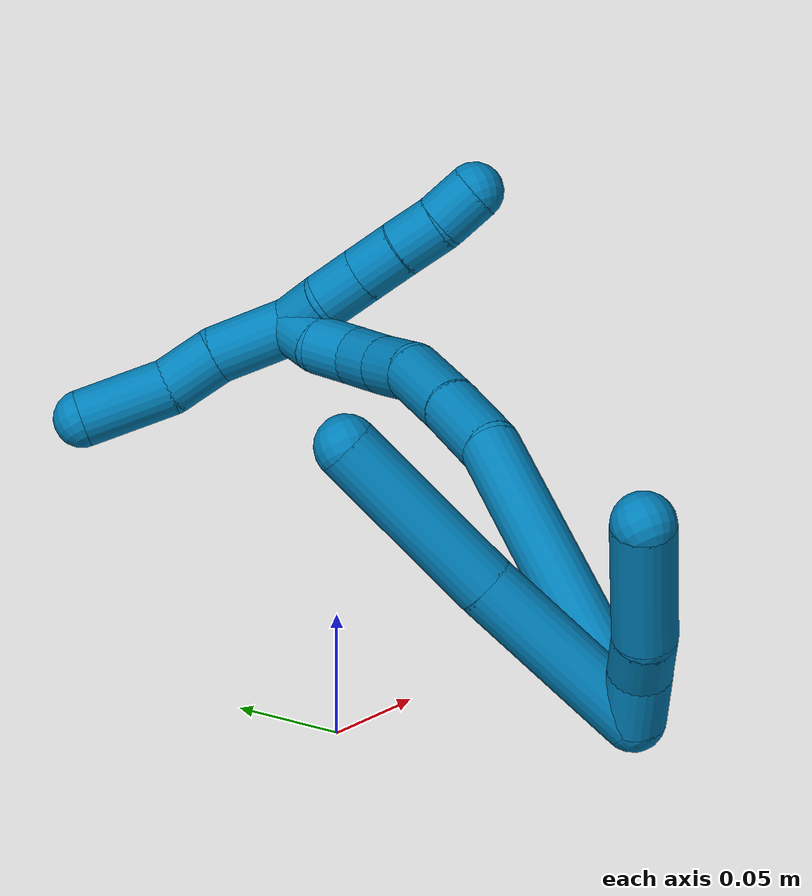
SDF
<sdf version="1.7">
 <world name="default">
  <model name="9">
   <static>0</static>
   <link name="9">
    <collision name="collision-cylinder-e_1_2_8">
     <pose>-0.017404 0.009405 0.032555 -0.281225 -0.474464 0.068421</pose>
     <geometry><cylinder><radius>0.0125</radius><length>0.076189</length></cylinder></geometry>
     <surface>
      <friction><ode><mu>1.16</mu><mu2>1.16</mu2><slip1>0</slip1><slip2>0</slip2></ode></friction>
      <contact><ode><kp>1e+06</kp><kd>1</kd><max_vel>0</max_vel><min_depth>0.001</min_depth></ode></contact>
     </surface>
    </collision>
    <visual name="visual-cylinder-e_1_2_8">
     <pose>-0.017404 0.009405 0.032555 -0.281225 -0.474464 0.068421</pose>
     <geometry><cylinder><radius>0.0125</radius><length>0.076189</length></cylinder></geometry>
     <material><ambient>0 0.490196 0.709804 1</ambient></material>
    </visual>
    <collision name="collision-cylinder-e_2_8_6">
     <pose>-0.051285 0.026431 0.097242 -0.232893 -0.462804 0.05511</pose>
     <geometry><cylinder><radius>0.0125</radius><length>0.073811</length></cylinder></geometry>
     <surface>
      <friction><ode><mu>1.16</mu><mu2>1.16</mu2><slip1>0</slip1><slip2>0</slip2></ode></friction>
      <contact><ode><kp>1e+06</kp><kd>1</kd><max_vel>0</max_vel><min_depth>0.001</min_depth></ode></contact>
     </surface>
    </collision>
    <visual name="visual-cylinder-e_2_8_6">
     <pose>-0.051285 0.026431 0.097242 -0.232893 -0.462804 0.05511</pose>
     <geometry><cylinder><radius>0.0125</radius><length>0.073811</length></cylinder></geometry>
     <material><ambient>0 0.490196 0.709804 1</ambient></material>
    </visual>
    <collision name="collision-cylinder-e_1_2_9">
     <pose>-0.006527 -0.007936 0.006637 0.874316 -0.562858 -0.268577</pose>
     <geometry><cylinder><radius>0.0125</radius><length>0.024465</length></cylinder></geometry>
     <surface>
      <friction><ode><mu>1.16</mu><mu2>1.16</mu2><slip1>0</slip1><slip2>0</slip2></ode></friction>
      <contact><ode><kp>1e+06</kp><kd>1</kd><max_vel>0</max_vel><min_depth>0.001</min_depth></ode></contact>
     </surface>
    </collision>
    <visual name="visual-cylinder-e_1_2_9">
     <pose>-0.006527 -0.007936 0.006637 0.874316 -0.562858 -0.268577</pose>
     <geometry><cylinder><radius>0.0125</radius><length>0.024465</length></cylinder></geometry>
     <material><ambient>0 0.490196 0.709804 1</ambient></material>
    </visual>
    <collision name="collision-cylinder-e_2_9_10">
     <pose>-0.020457 -0.022618 0.017413 1.02038 -0.751964 -0.434837</pose>
     <geometry><cylinder><radius>0.0125</radius><length>0.021674</length></cylinder></geometry>
     <surface>
      <friction><ode><mu>1.16</mu><mu2>1.16</mu2><slip1>0</slip1><slip2>0</slip2></ode></friction>
      <contact><ode><kp>1e+06</kp><kd>1</kd><max_vel>0</max_vel><min_depth>0.001</min_depth></ode></contact>
     </surface>
    </collision>
    <visual name="visual-cylinder-e_2_9_10">
     <pose>-0.020457 -0.022618 0.017413 1.02038 -0.751964 -0.434837</pose>
     <geometry><cylinder><radius>0.0125</radius><length>0.021674</length></cylinder></geometry>
     <material><ambient>0 0.490196 0.709804 1</ambient></material>
    </visual>
    <collision name="collision-cylinder-e_3_10_5">
     <pose>-0.043727 -0.044426 0.037257 0.764553 -0.630044 -0.260554</pose>
     <geometry><cylinder><radius>0.0125</radius><length>0.053861</length></cylinder></geometry>
     <surface>
      <friction><ode><mu>1.16</mu><mu2>1.16</mu2><slip1>0</slip1><slip2>0</slip2></ode></friction>
      <contact><ode><kp>1e+06</kp><kd>1</kd><max_vel>0</max_vel><min_depth>0.001</min_depth></ode></contact>
     </surface>
    </collision>
    <visual name="visual-cylinder-e_3_10_5">
     <pose>-0.043727 -0.044426 0.037257 0.764553 -0.630044 -0.260554</pose>
     <geometry><cylinder><radius>0.0125</radius><length>0.053861</length></cylinder></geometry>
     <material><ambient>0 0.490196 0.709804 1</ambient></material>
    </visual>
    <collision name="collision-cylinder-e_1_2_11">
     <pose>0.02851 0.017521 0.065736 -0.260483 0.396843 -0.052661</pose>
     <geometry><cylinder><radius>0.0125</radius><length>0.147526</length></cylinder></geometry>
     <surface>
      <friction><ode><mu>1.16</mu><mu2>1.16</mu2><slip1>0</slip1><slip2>0</slip2></ode></friction>
      <contact><ode><kp>1e+06</kp><kd>1</kd><max_vel>0</max_vel><min_depth>0.001</min_depth></ode></contact>
     </surface>
    </collision>
    <visual name="visual-cylinder-e_1_2_11">
     <pose>0.02851 0.017521 0.065736 -0.260483 0.396843 -0.052661</pose>
     <geometry><cylinder><radius>0.0125</radius><length>0.147526</length></cylinder></geometry>
     <material><ambient>0 0.490196 0.709804 1</ambient></material>
    </visual>
    <collision name="collision-cylinder-e_2_11_12">
     <pose>0.064318 0.042633 0.144433 -0.529775 0.452251 -0.124651</pose>
     <geometry><cylinder><radius>0.0125</radius><length>0.0334</length></cylinder></geometry>
     <surface>
      <friction><ode><mu>1.16</mu><mu2>1.16</mu2><slip1>0</slip1><slip2>0</slip2></ode></friction>
      <contact><ode><kp>1e+06</kp><kd>1</kd><max_vel>0</max_vel><min_depth>0.001</min_depth></ode></contact>
     </surface>
    </collision>
    <visual name="visual-cylinder-e_2_11_12">
     <pose>0.064318 0.042633 0.144433 -0.529775 0.452251 -0.124651</pose>
     <geometry><cylinder><radius>0.0125</radius><length>0.0334</length></cylinder></geometry>
     <material><ambient>0 0.490196 0.709804 1</ambient></material>
    </visual>
    <collision name="collision-cylinder-e_3_12_13">
     <pose>0.08008 0.058763 0.169833 -0.601655 0.511249 -0.161805</pose>
     <geometry><cylinder><radius>0.0125</radius><length>0.034598</length></cylinder></geometry>
     <surface>
      <friction><ode><mu>1.16</mu><mu2>1.16</mu2><slip1>0</slip1><slip2>0</slip2></ode></friction>
      <contact><ode><kp>1e+06</kp><kd>1</kd><max_vel>0</max_vel><min_depth>0.001</min_depth></ode></contact>
     </surface>
    </collision>
    <visual name="visual-cylinder-e_3_12_13">
     <pose>0.08008 0.058763 0.169833 -0.601655 0.511249 -0.161805</pose>
     <geometry><cylinder><radius>0.0125</radius><length>0.034598</length></cylinder></geometry>
     <material><ambient>0 0.490196 0.709804 1</ambient></material>
    </visual>
    <collision name="collision-cylinder-e_4_13_14">
     <pose>0.094257 0.075147 0.187886 -0.949553 0.53469 -0.279727</pose>
     <geometry><cylinder><radius>0.0125</radius><length>0.022423</length></cylinder></geometry>
     <surface>
      <friction><ode><mu>1.16</mu><mu2>1.16</mu2><slip1>0</slip1><slip2>0</slip2></ode></friction>
      <contact><ode><kp>1e+06</kp><kd>1</kd><max_vel>0</max_vel><min_depth>0.001</min_depth></ode></contact>
     </surface>
    </collision>
    <visual name="visual-cylinder-e_4_13_14">
     <pose>0.094257 0.075147 0.187886 -0.949553 0.53469 -0.279727</pose>
     <geometry><cylinder><radius>0.0125</radius><length>0.022423</length></cylinder></geometry>
     <material><ambient>0 0.490196 0.709804 1</ambient></material>
    </visual>
    <collision name="collision-cylinder-e_5_14_15">
     <pose>0.104769 0.090535 0.199585 -0.892111 0.459833 -0.222922</pose>
     <geometry><cylinder><radius>0.0125</radius><length>0.021631</length></cylinder></geometry>
     <surface>
      <friction><ode><mu>1.16</mu><mu2>1.16</mu2><slip1>0</slip1><slip2>0</slip2></ode></friction>
      <contact><ode><kp>1e+06</kp><kd>1</kd><max_vel>0</max_vel><min_depth>0.001</min_depth></ode></contact>
     </surface>
    </collision>
    <visual name="visual-cylinder-e_5_14_15">
     <pose>0.104769 0.090535 0.199585 -0.892111 0.459833 -0.222922</pose>
     <geometry><cylinder><radius>0.0125</radius><length>0.021631</length></cylinder></geometry>
     <material><ambient>0 0.490196 0.709804 1</ambient></material>
    </visual>
    <collision name="collision-cylinder-e_6_15_16">
     <pose>0.11084 0.10575 0.212223 -0.863762 0.125334 -0.057826</pose>
     <geometry><cylinder><radius>0.0125</radius><length>0.020336</length></cylinder></geometry>
     <surface>
      <friction><ode><mu>1.16</mu><mu2>1.16</mu2><slip1>0</slip1><slip2>0</slip2></ode></friction>
      <contact><ode><kp>1e+06</kp><kd>1</kd><max_vel>0</max_vel><min_depth>0.001</min_depth></ode></contact>
     </surface>
    </collision>
    <visual name="visual-cylinder-e_6_15_16">
     <pose>0.11084 0.10575 0.212223 -0.863762 0.125334 -0.057826</pose>
     <geometry><cylinder><radius>0.0125</radius><length>0.020336</length></cylinder></geometry>
     <material><ambient>0 0.490196 0.709804 1</ambient></material>
    </visual>
    <collision name="collision-cylinder-e_7_16_1">
     <pose>0.11537 0.119059 0.22642 -0.635644 0.330459 -0.109603</pose>
     <geometry><cylinder><radius>0.0125</radius><length>0.020086</length></cylinder></geometry>
     <surface>
      <friction><ode><mu>1.16</mu><mu2>1.16</mu2><slip1>0</slip1><slip2>0</slip2></ode></friction>
      <contact><ode><kp>1e+06</kp><kd>1</kd><max_vel>0</max_vel><min_depth>0.001</min_depth></ode></contact>
     </surface>
    </collision>
    <visual name="visual-cylinder-e_7_16_1">
     <pose>0.11537 0.119059 0.22642 -0.635644 0.330459 -0.109603</pose>
     <geometry><cylinder><radius>0.0125</radius><length>0.020086</length></cylinder></geometry>
     <material><ambient>0 0.490196 0.709804 1</ambient></material>
    </visual>
    <collision name="collision-cylinder-e_1_1_17">
     <pose>0.117486 0.114799 0.234884 1.48819 -0.114546 -0.105472</pose>
     <geometry><cylinder><radius>0.0125</radius><length>0.02</length></cylinder></geometry>
     <surface>
      <friction><ode><mu>1.16</mu><mu2>1.16</mu2><slip1>0</slip1><slip2>0</slip2></ode></friction>
      <contact><ode><kp>1e+06</kp><kd>1</kd><max_vel>0</max_vel><min_depth>0.001</min_depth></ode></contact>
     </surface>
    </collision>
    <visual name="visual-cylinder-e_1_1_17">
     <pose>0.117486 0.114799 0.234884 1.48819 -0.114546 -0.105472</pose>
     <geometry><cylinder><radius>0.0125</radius><length>0.02</length></cylinder></geometry>
     <material><ambient>0 0.490196 0.709804 1</ambient></material>
    </visual>
    <collision name="collision-cylinder-e_2_17_18">
     <pose>0.117664 0.095069 0.236988 1.44079 0.132533 0.116372</pose>
     <geometry><cylinder><radius>0.0125</radius><length>0.02</length></cylinder></geometry>
     <surface>
      <friction><ode><mu>1.16</mu><mu2>1.16</mu2><slip1>0</slip1><slip2>0</slip2></ode></friction>
      <contact><ode><kp>1e+06</kp><kd>1</kd><max_vel>0</max_vel><min_depth>0.001</min_depth></ode></contact>
     </surface>
    </collision>
    <visual name="visual-cylinder-e_2_17_18">
     <pose>0.117664 0.095069 0.236988 1.44079 0.132533 0.116372</pose>
     <geometry><cylinder><radius>0.0125</radius><length>0.02</length></cylinder></geometry>
     <material><ambient>0 0.490196 0.709804 1</ambient></material>
    </visual>
    <collision name="collision-cylinder-e_3_18_19">
     <pose>0.120185 0.075388 0.23949 1.44791 0.120224 0.106317</pose>
     <geometry><cylinder><radius>0.0125</radius><length>0.02</length></cylinder></geometry>
     <surface>
      <friction><ode><mu>1.16</mu><mu2>1.16</mu2><slip1>0</slip1><slip2>0</slip2></ode></friction>
      <contact><ode><kp>1e+06</kp><kd>1</kd><max_vel>0</max_vel><min_depth>0.001</min_depth></ode></contact>
     </surface>
    </collision>
    <visual name="visual-cylinder-e_3_18_19">
     <pose>0.120185 0.075388 0.23949 1.44791 0.120224 0.106317</pose>
     <geometry><cylinder><radius>0.0125</radius><length>0.02</length></cylinder></geometry>
     <material><ambient>0 0.490196 0.709804 1</ambient></material>
    </visual>
    <collision name="collision-cylinder-e_4_19_20">
     <pose>0.123116 0.055763 0.241937 1.44567 0.173998 0.153569</pose>
     <geometry><cylinder><radius>0.0125</radius><length>0.02</length></cylinder></geometry>
     <surface>
      <friction><ode><mu>1.16</mu><mu2>1.16</mu2><slip1>0</slip1><slip2>0</slip2></ode></friction>
      <contact><ode><kp>1e+06</kp><kd>1</kd><max_vel>0</max_vel><min_depth>0.001</min_depth></ode></contact>
     </surface>
    </collision>
    <visual name="visual-cylinder-e_4_19_20">
     <pose>0.123116 0.055763 0.241937 1.44567 0.173998 0.153569</pose>
     <geometry><cylinder><radius>0.0125</radius><length>0.02</length></cylinder></geometry>
     <material><ambient>0 0.490196 0.709804 1</ambient></material>
    </visual>
    <collision name="collision-cylinder-e_5_20_4">
     <pose>0.127193 0.036687 0.245984 1.27669 0.236838 0.176097</pose>
     <geometry><cylinder><radius>0.0125</radius><length>0.02</length></cylinder></geometry>
     <surface>
      <friction><ode><mu>1.16</mu><mu2>1.16</mu2><slip1>0</slip1><slip2>0</slip2></ode></friction>
      <contact><ode><kp>1e+06</kp><kd>1</kd><max_vel>0</max_vel><min_depth>0.001</min_depth></ode></contact>
     </surface>
    </collision>
    <visual name="visual-cylinder-e_5_20_4">
     <pose>0.127193 0.036687 0.245984 1.27669 0.236838 0.176097</pose>
     <geometry><cylinder><radius>0.0125</radius><length>0.02</length></cylinder></geometry>
     <material><ambient>0 0.490196 0.709804 1</ambient></material>
    </visual>
    <collision name="collision-cylinder-e_1_1_21">
     <pose>0.113799 0.141718 0.235261 -1.50059 -0.275873 0.257367</pose>
     <geometry><cylinder><radius>0.0125</radius><length>0.035463</length></cylinder></geometry>
     <surface>
      <friction><ode><mu>1.16</mu><mu2>1.16</mu2><slip1>0</slip1><slip2>0</slip2></ode></friction>
      <contact><ode><kp>1e+06</kp><kd>1</kd><max_vel>0</max_vel><min_depth>0.001</min_depth></ode></contact>
     </surface>
    </collision>
    <visual name="visual-cylinder-e_1_1_21">
     <pose>0.113799 0.141718 0.235261 -1.50059 -0.275873 0.257367</pose>
     <geometry><cylinder><radius>0.0125</radius><length>0.035463</length></cylinder></geometry>
     <material><ambient>0 0.490196 0.709804 1</ambient></material>
    </visual>
    <collision name="collision-cylinder-e_2_21_22">
     <pose>0.105611 0.170404 0.234529 -1.73464 -0.276682 0.325377</pose>
     <geometry><cylinder><radius>0.0125</radius><length>0.024585</length></cylinder></geometry>
     <surface>
      <friction><ode><mu>1.16</mu><mu2>1.16</mu2><slip1>0</slip1><slip2>0</slip2></ode></friction>
      <contact><ode><kp>1e+06</kp><kd>1</kd><max_vel>0</max_vel><min_depth>0.001</min_depth></ode></contact>
     </surface>
    </collision>
    <visual name="visual-cylinder-e_2_21_22">
     <pose>0.105611 0.170404 0.234529 -1.73464 -0.276682 0.325377</pose>
     <geometry><cylinder><radius>0.0125</radius><length>0.024585</length></cylinder></geometry>
     <material><ambient>0 0.490196 0.709804 1</ambient></material>
    </visual>
    <collision name="collision-cylinder-e_3_22_3">
     <pose>0.093143 0.199829 0.233417 -1.52483 -0.473567 0.453022</pose>
     <geometry><cylinder><radius>0.0125</radius><length>0.039952</length></cylinder></geometry>
     <surface>
      <friction><ode><mu>1.16</mu><mu2>1.16</mu2><slip1>0</slip1><slip2>0</slip2></ode></friction>
      <contact><ode><kp>1e+06</kp><kd>1</kd><max_vel>0</max_vel><min_depth>0.001</min_depth></ode></contact>
     </surface>
    </collision>
    <visual name="visual-cylinder-e_3_22_3">
     <pose>0.093143 0.199829 0.233417 -1.52483 -0.473567 0.453022</pose>
     <geometry><cylinder><radius>0.0125</radius><length>0.039952</length></cylinder></geometry>
     <material><ambient>0 0.490196 0.709804 1</ambient></material>
    </visual>
    <collision name="collision-sphere-3">
     <pose>0.084033 0.217588 0.234234 0 -0 0</pose>
     <geometry><sphere><radius>0.0125</radius></sphere></geometry>
     <surface>
      <friction><ode><mu>1.16</mu><mu2>1.16</mu2><slip1>0</slip1><slip2>0</slip2></ode></friction>
      <contact><ode><kp>1e+06</kp><kd>1</kd><max_vel>0</max_vel><min_depth>0.001</min_depth></ode></contact>
     </surface>
    </collision>
    <visual name="visual-sphere-3">
     <pose>0.084033 0.217588 0.234234 0 -0 0</pose>
     <geometry><sphere><radius>0.0125</radius></sphere></geometry>
     <material><ambient>0 0.490196 0.709804 1</ambient></material>
    </visual>
    <collision name="collision-sphere-22">
     <pose>0.102253 0.18207 0.2326 0 -0 0</pose>
     <geometry><sphere><radius>0.0125</radius></sphere></geometry>
     <surface>
      <friction><ode><mu>1.16</mu><mu2>1.16</mu2><slip1>0</slip1><slip2>0</slip2></ode></friction>
      <contact><ode><kp>1e+06</kp><kd>1</kd><max_vel>0</max_vel><min_depth>0.001</min_depth></ode></contact>
     </surface>
    </collision>
    <visual name="visual-sphere-22">
     <pose>0.102253 0.18207 0.2326 0 -0 0</pose>
     <geometry><sphere><radius>0.0125</radius></sphere></geometry>
     <material><ambient>0 0.490196 0.709804 1</ambient></material>
    </visual>
    <collision name="collision-sphere-21">
     <pose>0.108969 0.158737 0.236458 0 -0 0</pose>
     <geometry><sphere><radius>0.0125</radius></sphere></geometry>
     <surface>
      <friction><ode><mu>1.16</mu><mu2>1.16</mu2><slip1>0</slip1><slip2>0</slip2></ode></friction>
      <contact><ode><kp>1e+06</kp><kd>1</kd><max_vel>0</max_vel><min_depth>0.001</min_depth></ode></contact>
     </surface>
    </collision>
    <visual name="visual-sphere-21">
     <pose>0.108969 0.158737 0.236458 0 -0 0</pose>
     <geometry><sphere><radius>0.0125</radius></sphere></geometry>
     <material><ambient>0 0.490196 0.709804 1</ambient></material>
    </visual>
    <collision name="collision-sphere-4">
     <pose>0.129539 0.027384 0.248802 0 -0 0</pose>
     <geometry><sphere><radius>0.0125</radius></sphere></geometry>
     <surface>
      <friction><ode><mu>1.16</mu><mu2>1.16</mu2><slip1>0</slip1><slip2>0</slip2></ode></friction>
      <contact><ode><kp>1e+06</kp><kd>1</kd><max_vel>0</max_vel><min_depth>0.001</min_depth></ode></contact>
     </surface>
    </collision>
    <visual name="visual-sphere-4">
     <pose>0.129539 0.027384 0.248802 0 -0 0</pose>
     <geometry><sphere><radius>0.0125</radius></sphere></geometry>
     <material><ambient>0 0.490196 0.709804 1</ambient></material>
    </visual>
    <collision name="collision-sphere-20">
     <pose>0.124847 0.045991 0.243166 0 -0 0</pose>
     <geometry><sphere><radius>0.0125</radius></sphere></geometry>
     <surface>
      <friction><ode><mu>1.16</mu><mu2>1.16</mu2><slip1>0</slip1><slip2>0</slip2></ode></friction>
      <contact><ode><kp>1e+06</kp><kd>1</kd><max_vel>0</max_vel><min_depth>0.001</min_depth></ode></contact>
     </surface>
    </collision>
    <visual name="visual-sphere-20">
     <pose>0.124847 0.045991 0.243166 0 -0 0</pose>
     <geometry><sphere><radius>0.0125</radius></sphere></geometry>
     <material><ambient>0 0.490196 0.709804 1</ambient></material>
    </visual>
    <collision name="collision-sphere-5">
     <pose>-0.059594 -0.059489 0.052961 0 -0 0</pose>
     <geometry><sphere><radius>0.0125</radius></sphere></geometry>
     <surface>
      <friction><ode><mu>1.16</mu><mu2>1.16</mu2><slip1>0</slip1><slip2>0</slip2></ode></friction>
      <contact><ode><kp>1e+06</kp><kd>1</kd><max_vel>0</max_vel><min_depth>0.001</min_depth></ode></contact>
     </surface>
    </collision>
    <visual name="visual-sphere-5">
     <pose>-0.059594 -0.059489 0.052961 0 -0 0</pose>
     <geometry><sphere><radius>0.0125</radius></sphere></geometry>
     <material><ambient>0 0.490196 0.709804 1</ambient></material>
    </visual>
    <collision name="collision-sphere-10">
     <pose>-0.02786 -0.029364 0.021553 0 -0 0</pose>
     <geometry><sphere><radius>0.0125</radius></sphere></geometry>
     <surface>
      <friction><ode><mu>1.16</mu><mu2>1.16</mu2><slip1>0</slip1><slip2>0</slip2></ode></friction>
      <contact><ode><kp>1e+06</kp><kd>1</kd><max_vel>0</max_vel><min_depth>0.001</min_depth></ode></contact>
     </surface>
    </collision>
    <visual name="visual-sphere-10">
     <pose>-0.02786 -0.029364 0.021553 0 -0 0</pose>
     <geometry><sphere><radius>0.0125</radius></sphere></geometry>
     <material><ambient>0 0.490196 0.709804 1</ambient></material>
    </visual>
    <collision name="collision-sphere-6">
     <pose>-0.067761 0.034052 0.129374 0 -0 0</pose>
     <geometry><sphere><radius>0.0125</radius></sphere></geometry>
     <surface>
      <friction><ode><mu>1.16</mu><mu2>1.16</mu2><slip1>0</slip1><slip2>0</slip2></ode></friction>
      <contact><ode><kp>1e+06</kp><kd>1</kd><max_vel>0</max_vel><min_depth>0.001</min_depth></ode></contact>
     </surface>
    </collision>
    <visual name="visual-sphere-6">
     <pose>-0.067761 0.034052 0.129374 0 -0 0</pose>
     <geometry><sphere><radius>0.0125</radius></sphere></geometry>
     <material><ambient>0 0.490196 0.709804 1</ambient></material>
    </visual>
    <collision name="collision-sphere-9">
     <pose>-0.013055 -0.015872 0.013273 0 -0 0</pose>
     <geometry><sphere><radius>0.0125</radius></sphere></geometry>
     <surface>
      <friction><ode><mu>1.16</mu><mu2>1.16</mu2><slip1>0</slip1><slip2>0</slip2></ode></friction>
      <contact><ode><kp>1e+06</kp><kd>1</kd><max_vel>0</max_vel><min_depth>0.001</min_depth></ode></contact>
     </surface>
    </collision>
    <visual name="visual-sphere-9">
     <pose>-0.013055 -0.015872 0.013273 0 -0 0</pose>
     <geometry><sphere><radius>0.0125</radius></sphere></geometry>
     <material><ambient>0 0.490196 0.709804 1</ambient></material>
    </visual>
    <collision name="collision-sphere-2">
     <geometry><sphere><radius>0.0125</radius></sphere></geometry>
     <surface>
      <friction><ode><mu>1.16</mu><mu2>1.16</mu2><slip1>0</slip1><slip2>0</slip2></ode></friction>
      <contact><ode><kp>1e+06</kp><kd>1</kd><max_vel>0</max_vel><min_depth>0.001</min_depth></ode></contact>
     </surface>
    </collision>
    <visual name="visual-sphere-2">
     <geometry><sphere><radius>0.0125</radius></sphere></geometry>
     <material><ambient>0 0.490196 0.709804 1</ambient></material>
    </visual>
    <collision name="collision-sphere-19">
     <pose>0.121384 0.065535 0.240707 0 -0 0</pose>
     <geometry><sphere><radius>0.0125</radius></sphere></geometry>
     <surface>
      <friction><ode><mu>1.16</mu><mu2>1.16</mu2><slip1>0</slip1><slip2>0</slip2></ode></friction>
      <contact><ode><kp>1e+06</kp><kd>1</kd><max_vel>0</max_vel><min_depth>0.001</min_depth></ode></contact>
     </surface>
    </collision>
    <visual name="visual-sphere-19">
     <pose>0.121384 0.065535 0.240707 0 -0 0</pose>
     <geometry><sphere><radius>0.0125</radius></sphere></geometry>
     <material><ambient>0 0.490196 0.709804 1</ambient></material>
    </visual>
    <collision name="collision-sphere-8">
     <pose>-0.034808 0.018809 0.065111 0 -0 0</pose>
     <geometry><sphere><radius>0.0125</radius></sphere></geometry>
     <surface>
      <friction><ode><mu>1.16</mu><mu2>1.16</mu2><slip1>0</slip1><slip2>0</slip2></ode></friction>
      <contact><ode><kp>1e+06</kp><kd>1</kd><max_vel>0</max_vel><min_depth>0.001</min_depth></ode></contact>
     </surface>
    </collision>
    <visual name="visual-sphere-8">
     <pose>-0.034808 0.018809 0.065111 0 -0 0</pose>
     <geometry><sphere><radius>0.0125</radius></sphere></geometry>
     <material><ambient>0 0.490196 0.709804 1</ambient></material>
    </visual>
    <collision name="collision-sphere-11">
     <pose>0.05702 0.035042 0.131471 0 -0 0</pose>
     <geometry><sphere><radius>0.0125</radius></sphere></geometry>
     <surface>
      <friction><ode><mu>1.16</mu><mu2>1.16</mu2><slip1>0</slip1><slip2>0</slip2></ode></friction>
      <contact><ode><kp>1e+06</kp><kd>1</kd><max_vel>0</max_vel><min_depth>0.001</min_depth></ode></contact>
     </surface>
    </collision>
    <visual name="visual-sphere-11">
     <pose>0.05702 0.035042 0.131471 0 -0 0</pose>
     <geometry><sphere><radius>0.0125</radius></sphere></geometry>
     <material><ambient>0 0.490196 0.709804 1</ambient></material>
    </visual>
    <collision name="collision-sphere-12">
     <pose>0.071616 0.050224 0.157395 0 -0 0</pose>
     <geometry><sphere><radius>0.0125</radius></sphere></geometry>
     <surface>
      <friction><ode><mu>1.16</mu><mu2>1.16</mu2><slip1>0</slip1><slip2>0</slip2></ode></friction>
      <contact><ode><kp>1e+06</kp><kd>1</kd><max_vel>0</max_vel><min_depth>0.001</min_depth></ode></contact>
     </surface>
    </collision>
    <visual name="visual-sphere-12">
     <pose>0.071616 0.050224 0.157395 0 -0 0</pose>
     <geometry><sphere><radius>0.0125</radius></sphere></geometry>
     <material><ambient>0 0.490196 0.709804 1</ambient></material>
    </visual>
    <collision name="collision-sphere-13">
     <pose>0.088544 0.067303 0.182271 0 -0 0</pose>
     <geometry><sphere><radius>0.0125</radius></sphere></geometry>
     <surface>
      <friction><ode><mu>1.16</mu><mu2>1.16</mu2><slip1>0</slip1><slip2>0</slip2></ode></friction>
      <contact><ode><kp>1e+06</kp><kd>1</kd><max_vel>0</max_vel><min_depth>0.001</min_depth></ode></contact>
     </surface>
    </collision>
    <visual name="visual-sphere-13">
     <pose>0.088544 0.067303 0.182271 0 -0 0</pose>
     <geometry><sphere><radius>0.0125</radius></sphere></geometry>
     <material><ambient>0 0.490196 0.709804 1</ambient></material>
    </visual>
    <collision name="collision-sphere-14">
     <pose>0.099969 0.082991 0.193501 0 -0 0</pose>
     <geometry><sphere><radius>0.0125</radius></sphere></geometry>
     <surface>
      <friction><ode><mu>1.16</mu><mu2>1.16</mu2><slip1>0</slip1><slip2>0</slip2></ode></friction>
      <contact><ode><kp>1e+06</kp><kd>1</kd><max_vel>0</max_vel><min_depth>0.001</min_depth></ode></contact>
     </surface>
    </collision>
    <visual name="visual-sphere-14">
     <pose>0.099969 0.082991 0.193501 0 -0 0</pose>
     <geometry><sphere><radius>0.0125</radius></sphere></geometry>
     <material><ambient>0 0.490196 0.709804 1</ambient></material>
    </visual>
    <collision name="collision-sphere-15">
     <pose>0.109569 0.098079 0.205669 0 -0 0</pose>
     <geometry><sphere><radius>0.0125</radius></sphere></geometry>
     <surface>
      <friction><ode><mu>1.16</mu><mu2>1.16</mu2><slip1>0</slip1><slip2>0</slip2></ode></friction>
      <contact><ode><kp>1e+06</kp><kd>1</kd><max_vel>0</max_vel><min_depth>0.001</min_depth></ode></contact>
     </surface>
    </collision>
    <visual name="visual-sphere-15">
     <pose>0.109569 0.098079 0.205669 0 -0 0</pose>
     <geometry><sphere><radius>0.0125</radius></sphere></geometry>
     <material><ambient>0 0.490196 0.709804 1</ambient></material>
    </visual>
    <collision name="collision-sphere-16">
     <pose>0.112111 0.11342 0.218776 0 -0 0</pose>
     <geometry><sphere><radius>0.0125</radius></sphere></geometry>
     <surface>
      <friction><ode><mu>1.16</mu><mu2>1.16</mu2><slip1>0</slip1><slip2>0</slip2></ode></friction>
      <contact><ode><kp>1e+06</kp><kd>1</kd><max_vel>0</max_vel><min_depth>0.001</min_depth></ode></contact>
     </surface>
    </collision>
    <visual name="visual-sphere-16">
     <pose>0.112111 0.11342 0.218776 0 -0 0</pose>
     <geometry><sphere><radius>0.0125</radius></sphere></geometry>
     <material><ambient>0 0.490196 0.709804 1</ambient></material>
    </visual>
    <collision name="collision-sphere-1">
     <pose>0.118629 0.124699 0.234064 0 -0 0</pose>
     <geometry><sphere><radius>0.0125</radius></sphere></geometry>
     <surface>
      <friction><ode><mu>1.16</mu><mu2>1.16</mu2><slip1>0</slip1><slip2>0</slip2></ode></friction>
      <contact><ode><kp>1e+06</kp><kd>1</kd><max_vel>0</max_vel><min_depth>0.001</min_depth></ode></contact>
     </surface>
    </collision>
    <visual name="visual-sphere-1">
     <pose>0.118629 0.124699 0.234064 0 -0 0</pose>
     <geometry><sphere><radius>0.0125</radius></sphere></geometry>
     <material><ambient>0 0.490196 0.709804 1</ambient></material>
    </visual>
    <collision name="collision-sphere-18">
     <pose>0.118986 0.085241 0.238273 0 -0 0</pose>
     <geometry><sphere><radius>0.0125</radius></sphere></geometry>
     <surface>
      <friction><ode><mu>1.16</mu><mu2>1.16</mu2><slip1>0</slip1><slip2>0</slip2></ode></friction>
      <contact><ode><kp>1e+06</kp><kd>1</kd><max_vel>0</max_vel><min_depth>0.001</min_depth></ode></contact>
     </surface>
    </collision>
    <visual name="visual-sphere-18">
     <pose>0.118986 0.085241 0.238273 0 -0 0</pose>
     <geometry><sphere><radius>0.0125</radius></sphere></geometry>
     <material><ambient>0 0.490196 0.709804 1</ambient></material>
    </visual>
    <collision name="collision-sphere-17">
     <pose>0.116343 0.104898 0.235703 0 -0 0</pose>
     <geometry><sphere><radius>0.0125</radius></sphere></geometry>
     <surface>
      <friction><ode><mu>1.16</mu><mu2>1.16</mu2><slip1>0</slip1><slip2>0</slip2></ode></friction>
      <contact><ode><kp>1e+06</kp><kd>1</kd><max_vel>0</max_vel><min_depth>0.001</min_depth></ode></contact>
     </surface>
    </collision>
    <visual name="visual-sphere-17">
     <pose>0.116343 0.104898 0.235703 0 -0 0</pose>
     <geometry><sphere><radius>0.0125</radius></sphere></geometry>
     <material><ambient>0 0.490196 0.709804 1</ambient></material>
    </visual>
    <inertial>
     <pose>0.043297 0.051427 0.129888 0 -0 0</pose>
     <mass>0.75</mass>
     <inertia>
      <ixx>0.000355</ixx>
      <ixy>0</ixy>
      <ixz>0</ixz>
      <iyy>0.000367</iyy>
      <iyz>0</iyz>
      <izz>-0.000115</izz>
     </inertia>
    </inertial>
   </link>
   <pose>-0.013572 -0.150518 0.042084 -0.584678 0.261251 0.133845</pose>
  </model>
 </world>
</sdf>
